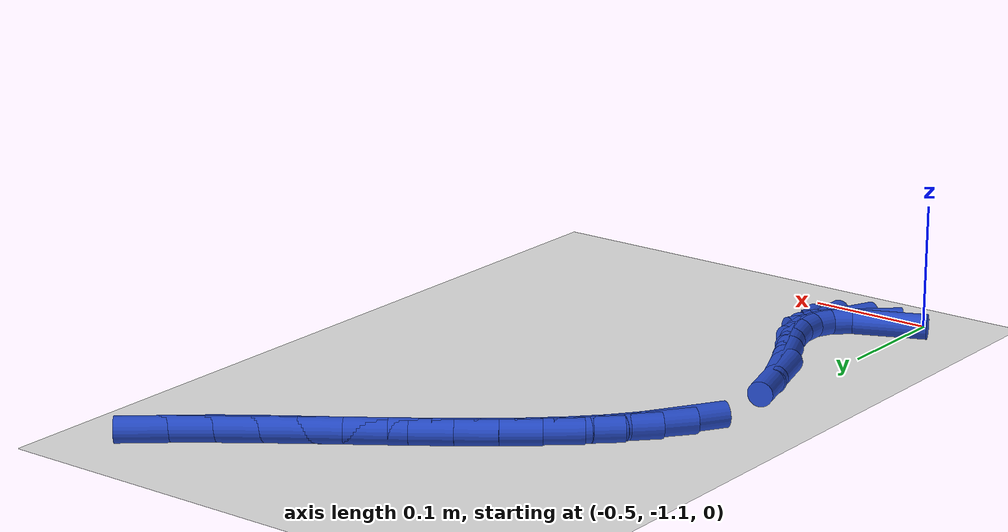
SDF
<sdf version="1.6">
 <world name="default">
  <model name="ground_plane">
   <static>1</static>
   <link name="link">
    <collision name="collision">
     <geometry><plane><normal>0 0 1</normal><size>100 100</size></plane></geometry>
     <surface><friction><ode><mu>100</mu><mu2>50</mu2></ode></friction></surface>
    </collision>
    <visual name="visual">
     <cast_shadows>0</cast_shadows>
     <geometry><plane><normal>0 0 1</normal><size>100 100</size></plane></geometry>
     <material>
      <script><uri>file://media/materials/scripts/gazebo.material</uri><name>Gazebo/WhiteGlow</name></script>
     </material>
    </visual>
   </link>
  </model>
  <model name="line">
   <link name="link_214">
    <pose>-0.480350622148161 -1.0600261278513683 0.01 0 1.57 0.41178092361715246</pose>
    <collision name="collision">
     <geometry><cylinder><radius>0.01</radius><length>0.08</length></cylinder></geometry>
    </collision>
    <visual name="visual">
     <material>
      <script><name>Gazebo/Blue</name><uri>file://media/materials/scripts/gazebo.material</uri></script>
     </material>
     <geometry><cylinder><radius>0.01</radius><length>0.08</length></cylinder></geometry>
    </visual>
   </link>
   <link name="link_215">
    <pose>-0.46201335275867045 -1.0520173218742928 0.01 0 1.57 0.7237748877289811</pose>
    <collision name="collision">
     <geometry><cylinder><radius>0.01</radius><length>0.08</length></cylinder></geometry>
    </collision>
    <visual name="visual">
     <material>
      <script><name>Gazebo/Blue</name><uri>file://media/materials/scripts/gazebo.material</uri></script>
     </material>
     <geometry><cylinder><radius>0.01</radius><length>0.08</length></cylinder></geometry>
    </visual>
   </link>
   <link name="link_216">
    <pose>-0.449229927417893 -1.040719729013514 0.01 0 1.57 1.1556380491586895</pose>
    <collision name="collision">
     <geometry><cylinder><radius>0.01</radius><length>0.08</length></cylinder></geometry>
    </collision>
    <visual name="visual">
     <material>
      <script><name>Gazebo/Blue</name><uri>file://media/materials/scripts/gazebo.material</uri></script>
     </material>
     <geometry><cylinder><radius>0.01</radius><length>0.08</length></cylinder></geometry>
    </visual>
   </link>
   <link name="link_217">
    <pose>-0.44265704181072707 -1.0258077109034691 0.01 0 1.57 -1.555206836111486</pose>
    <collision name="collision">
     <geometry><cylinder><radius>0.01</radius><length>0.08</length></cylinder></geometry>
    </collision>
    <visual name="visual">
     <material>
      <script><name>Gazebo/Blue</name><uri>file://media/materials/scripts/gazebo.material</uri></script>
     </material>
     <geometry><cylinder><radius>0.01</radius><length>0.08</length></cylinder></geometry>
    </visual>
   </link>
   <link name="link_218">
    <pose>-0.4429509569036811 -1.00695582611407 0.01 0 1.57 -1.2697951602413666</pose>
    <collision name="collision">
     <geometry><cylinder><radius>0.01</radius><length>0.08</length></cylinder></geometry>
    </collision>
    <visual name="visual">
     <material>
      <script><name>Gazebo/Blue</name><uri>file://media/materials/scripts/gazebo.material</uri></script>
     </material>
     <geometry><cylinder><radius>0.01</radius><length>0.08</length></cylinder></geometry>
    </visual>
   </link>
   <link name="link_219">
    <pose>-0.4500224736836737 -0.9841763403828477 0.01 0 1.57 -1.1499832058021962</pose>
    <collision name="collision">
     <geometry><cylinder><radius>0.01</radius><length>0.08</length></cylinder></geometry>
    </collision>
    <visual name="visual">
     <material>
      <script><name>Gazebo/Blue</name><uri>file://media/materials/scripts/gazebo.material</uri></script>
     </material>
     <geometry><cylinder><radius>0.01</radius><length>0.08</length></cylinder></geometry>
    </visual>
   </link>
   <link name="link_220">
    <pose>-0.46150870798257854 -0.9585115409035941 0.01 0 1.57 -1.1233867046414747</pose>
    <collision name="collision">
     <geometry><cylinder><radius>0.01</radius><length>0.08</length></cylinder></geometry>
    </collision>
    <visual name="visual">
     <material>
      <script><name>Gazebo/Blue</name><uri>file://media/materials/scripts/gazebo.material</uri></script>
     </material>
     <geometry><cylinder><radius>0.01</radius><length>0.08</length></cylinder></geometry>
    </visual>
   </link>
   <link name="link_221">
    <pose>-0.47461483023210976 -0.9311993941307584 0.01 0 1.57 -1.1643657535667538</pose>
    <collision name="collision">
     <geometry><cylinder><radius>0.01</radius><length>0.08</length></cylinder></geometry>
    </collision>
    <visual name="visual">
     <material>
      <script><name>Gazebo/Blue</name><uri>file://media/materials/scripts/gazebo.material</uri></script>
     </material>
     <geometry><cylinder><radius>0.01</radius><length>0.08</length></cylinder></geometry>
    </visual>
   </link>
   <link name="link_222">
    <pose>-0.4865460108639819 -0.9034778665187861 0.01 0 1.57 -1.2806823298322358</pose>
    <collision name="collision">
     <geometry><cylinder><radius>0.01</radius><length>0.08</length></cylinder></geometry>
    </collision>
    <visual name="visual">
     <material>
      <script><name>Gazebo/Blue</name><uri>file://media/materials/scripts/gazebo.material</uri></script>
     </material>
     <geometry><cylinder><radius>0.01</radius><length>0.08</length></cylinder></geometry>
    </visual>
   </link>
   <link name="link_227">
    <pose>-0.4799922747114871 -0.7810586194844619 0.01 0 1.57 1.0106516026117551</pose>
    <collision name="collision">
     <geometry><cylinder><radius>0.01</radius><length>0.08</length></cylinder></geometry>
    </collision>
    <visual name="visual">
     <material>
      <script><name>Gazebo/Blue</name><uri>file://media/materials/scripts/gazebo.material</uri></script>
     </material>
     <geometry><cylinder><radius>0.01</radius><length>0.08</length></cylinder></geometry>
    </visual>
   </link>
   <link name="link_228">
    <pose>-0.46656743100477 -0.7596525463000544 0.01 0 1.57 0.8955043159656435</pose>
    <collision name="collision">
     <geometry><cylinder><radius>0.01</radius><length>0.08</length></cylinder></geometry>
    </collision>
    <visual name="visual">
     <material>
      <script><name>Gazebo/Blue</name><uri>file://media/materials/scripts/gazebo.material</uri></script>
     </material>
     <geometry><cylinder><radius>0.01</radius><length>0.08</length></cylinder></geometry>
    </visual>
   </link>
   <link name="link_229">
    <pose>-0.45001843266942826 -0.7389896513575617 0.01 0 1.57 0.8047674255119235</pose>
    <collision name="collision">
     <geometry><cylinder><radius>0.01</radius><length>0.08</length></cylinder></geometry>
    </collision>
    <visual name="visual">
     <material>
      <script><name>Gazebo/Blue</name><uri>file://media/materials/scripts/gazebo.material</uri></script>
     </material>
     <geometry><cylinder><radius>0.01</radius><length>0.08</length></cylinder></geometry>
    </visual>
   </link>
   <link name="link_230">
    <pose>-0.430738567748367 -0.7189480636534139 0.01 0 1.57 0.7350202127236041</pose>
    <collision name="collision">
     <geometry><cylinder><radius>0.01</radius><length>0.08</length></cylinder></geometry>
    </collision>
    <visual name="visual">
     <material>
      <script><name>Gazebo/Blue</name><uri>file://media/materials/scripts/gazebo.material</uri></script>
     </material>
     <geometry><cylinder><radius>0.01</radius><length>0.08</length></cylinder></geometry>
    </visual>
   </link>
   <link name="link_231">
    <pose>-0.40912112428448955 -0.699405912184039 0.01 0 1.57 0.6828449429782872</pose>
    <collision name="collision">
     <geometry><cylinder><radius>0.01</radius><length>0.08</length></cylinder></geometry>
    </collision>
    <visual name="visual">
     <material>
      <script><name>Gazebo/Blue</name><uri>file://media/materials/scripts/gazebo.material</uri></script>
     </material>
     <geometry><cylinder><radius>0.01</radius><length>0.08</length></cylinder></geometry>
    </visual>
   </link>
   <link name="link_232">
    <pose>-0.38555939032069964 -0.680241325945866 0.01 0 1.57 0.6453929711447212</pose>
    <collision name="collision">
     <geometry><cylinder><radius>0.01</radius><length>0.08</length></cylinder></geometry>
    </collision>
    <visual name="visual">
     <material>
      <script><name>Gazebo/Blue</name><uri>file://media/materials/scripts/gazebo.material</uri></script>
     </material>
     <geometry><cylinder><radius>0.01</radius><length>0.08</length></cylinder></geometry>
    </visual>
   </link>
   <link name="link_233">
    <pose>-0.36044665389990144 -0.6613324339353238 0.01 0 1.57 0.620513113173192</pose>
    <collision name="collision">
     <geometry><cylinder><radius>0.01</radius><length>0.08</length></cylinder></geometry>
    </collision>
    <visual name="visual">
     <material>
      <script><name>Gazebo/Blue</name><uri>file://media/materials/scripts/gazebo.material</uri></script>
     </material>
     <geometry><cylinder><radius>0.01</radius><length>0.08</length></cylinder></geometry>
    </visual>
   </link>
   <link name="link_234">
    <pose>-0.3341762030649987 -0.642557365148841 0.01 0 1.57 0.606710520259389</pose>
    <collision name="collision">
     <geometry><cylinder><radius>0.01</radius><length>0.08</length></cylinder></geometry>
    </collision>
    <visual name="visual">
     <material>
      <script><name>Gazebo/Blue</name><uri>file://media/materials/scripts/gazebo.material</uri></script>
     </material>
     <geometry><cylinder><radius>0.01</radius><length>0.08</length></cylinder></geometry>
    </visual>
   </link>
   <link name="link_235">
    <pose>-0.30714132585889514 -0.6237942485828465 0.01 0 1.57 0.6030649268307355</pose>
    <collision name="collision">
     <geometry><cylinder><radius>0.01</radius><length>0.08</length></cylinder></geometry>
    </collision>
    <visual name="visual">
     <material>
      <script><name>Gazebo/Blue</name><uri>file://media/materials/scripts/gazebo.material</uri></script>
     </material>
     <geometry><cylinder><radius>0.01</radius><length>0.08</length></cylinder></geometry>
    </visual>
   </link>
   <link name="link_236">
    <pose>-0.27973531032449417 -0.6049212132337687 0.01 0 1.57 0.6091586138899614</pose>
    <collision name="collision">
     <geometry><cylinder><radius>0.01</radius><length>0.08</length></cylinder></geometry>
    </collision>
    <visual name="visual">
     <material>
      <script><name>Gazebo/Blue</name><uri>file://media/materials/scripts/gazebo.material</uri></script>
     </material>
     <geometry><cylinder><radius>0.01</radius><length>0.08</length></cylinder></geometry>
    </visual>
   </link>
   <link name="link_237">
    <pose>-0.25235144450470093 -0.5858163880980373 0.01 0 1.57 0.6250288894291167</pose>
    <collision name="collision">
     <geometry><cylinder><radius>0.01</radius><length>0.08</length></cylinder></geometry>
    </collision>
    <visual name="visual">
     <material>
      <script><name>Gazebo/Blue</name><uri>file://media/materials/scripts/gazebo.material</uri></script>
     </material>
     <geometry><cylinder><radius>0.01</radius><length>0.08</length></cylinder></geometry>
    </visual>
   </link>
   <link name="link_238">
    <pose>-0.22538301644241884 -0.5663579021720807 0.01 0 1.57 0.651144827005855</pose>
    <collision name="collision">
     <geometry><cylinder><radius>0.01</radius><length>0.08</length></cylinder></geometry>
    </collision>
    <visual name="visual">
     <material>
      <script><name>Gazebo/Blue</name><uri>file://media/materials/scripts/gazebo.material</uri></script>
     </material>
     <geometry><cylinder><radius>0.01</radius><length>0.08</length></cylinder></geometry>
    </visual>
   </link>
   <link name="link_239">
    <pose>-0.1992233141805516 -0.5464238844523278 0.01 0 1.57 0.6883996190295835</pose>
    <collision name="collision">
     <geometry><cylinder><radius>0.01</radius><length>0.08</length></cylinder></geometry>
    </collision>
    <visual name="visual">
     <material>
      <script><name>Gazebo/Blue</name><uri>file://media/materials/scripts/gazebo.material</uri></script>
     </material>
     <geometry><cylinder><radius>0.01</radius><length>0.08</length></cylinder></geometry>
    </visual>
   </link>
  </model>
 </world>
</sdf>
